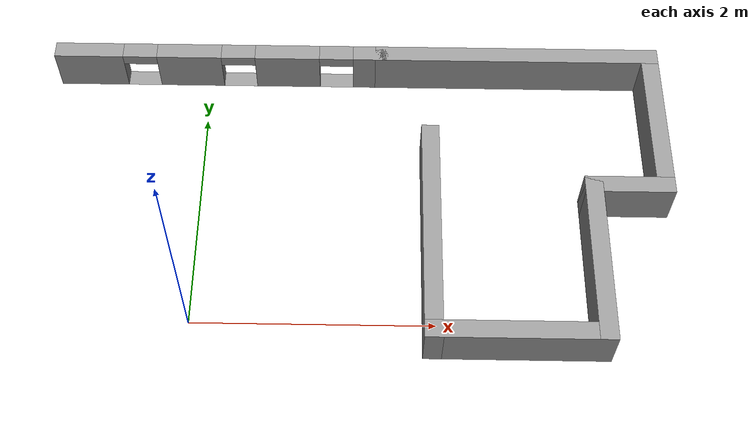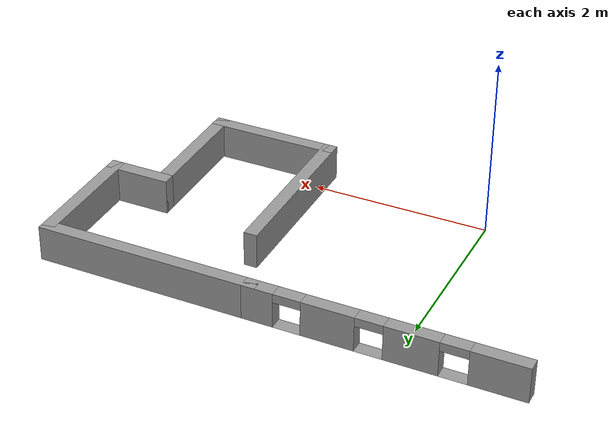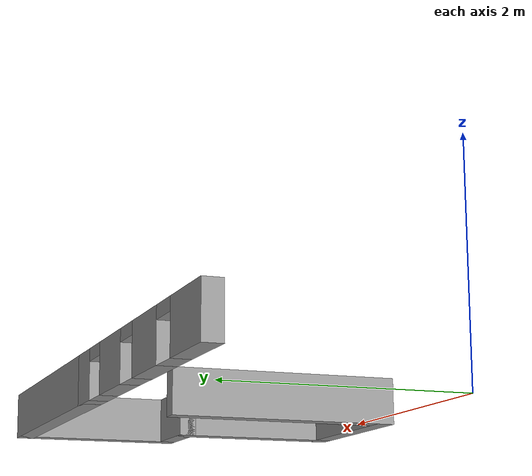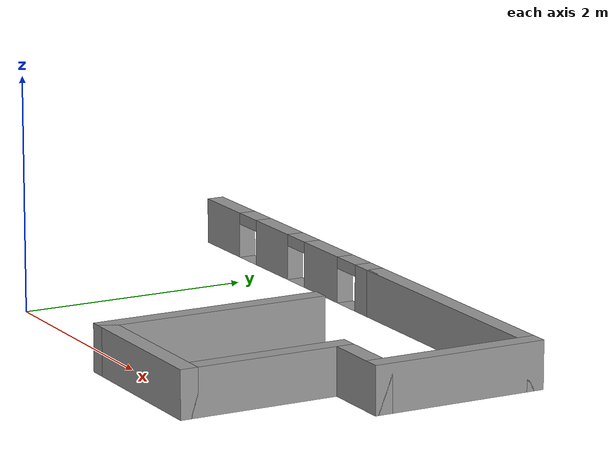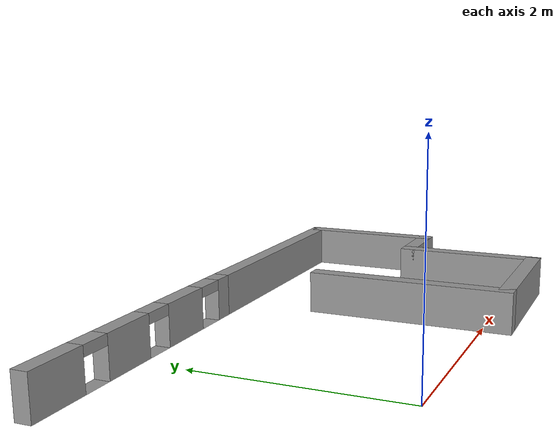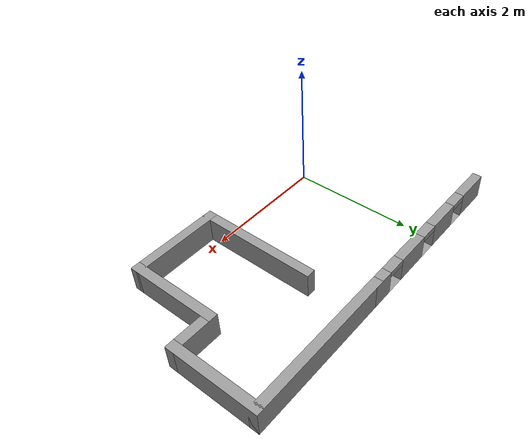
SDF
<?xml version='1.0'?>
<sdf version='1.7'>
  <model name='map'>
    <pose frame=''>1.3132 1.175 0 0 -0 1.5708</pose>
    <link name='Wall_12'>
      <pose>1.3132 1.175 0 0 -0 1.5708</pose>
      <self_collide>0</self_collide>
      <enable_wind>0</enable_wind>
      <kinematic>0</kinematic>
      <visual name='Wall_12_Visual_0'>
        <pose>-1.32638 0 0.2 0 -0 0</pose>
        <geometry>
          <box>
            <size>0.34725 0.15 0.4</size>
          </box>
        </geometry>
        <material>
          <script>
            <uri>file://media/materials/scripts/gazebo.material</uri>
            <name>Gazebo/Grey</name>
          </script>
          <ambient>1 1 1 1</ambient>
          <shader type='pixel'/>
        </material>
        <meta>
          <layer>0</layer>
        </meta>
        <transparency>0</transparency>
        <cast_shadows>1</cast_shadows>
      </visual>
      <visual name='Wall_12_Visual_1'>
        <pose>-0.566325 0 0.2 0 -0 0</pose>
        <geometry>
          <box>
            <size>0.57285 0.15 0.4</size>
          </box>
        </geometry>
        <material>
          <script>
            <uri>file://media/materials/scripts/gazebo.material</uri>
            <name>Gazebo/Grey</name>
          </script>
          <ambient>1 1 1 1</ambient>
          <shader type='pixel'/>
        </material>
        <meta>
          <layer>0</layer>
        </meta>
        <transparency>0</transparency>
        <cast_shadows>1</cast_shadows>
      </visual>
      <visual name='Wall_12_Visual_2'>
        <pose>0.306525 0 0.2 0 -0 0</pose>
        <geometry>
          <box>
            <size>0.57285 0.15 0.4</size>
          </box>
        </geometry>
        <material>
          <script>
            <uri>file://media/materials/scripts/gazebo.material</uri>
            <name>Gazebo/Grey</name>
          </script>
          <ambient>1 1 1 1</ambient>
          <shader type='pixel'/>
        </material>
        <meta>
          <layer>0</layer>
        </meta>
        <transparency>0</transparency>
        <cast_shadows>1</cast_shadows>
      </visual>
      <visual name='Wall_12_Visual_3'>
        <pose>1.19647 0 0.2 0 -0 0</pose>
        <geometry>
          <box>
            <size>0.60705 0.15 0.4</size>
          </box>
        </geometry>
        <material>
          <script>
            <uri>file://media/materials/scripts/gazebo.material</uri>
            <name>Gazebo/Grey</name>
          </script>
          <ambient>1 1 1 1</ambient>
          <shader type='pixel'/>
        </material>
        <meta>
          <layer>0</layer>
        </meta>
        <transparency>0</transparency>
        <cast_shadows>1</cast_shadows>
      </visual>
      <visual name='Wall_12_Visual_4'>
        <pose>-1.00275 0 0 0 -0 0</pose>
        <geometry>
          <box>
            <size>0.3 0.15 0</size>
          </box>
        </geometry>
        <material>
          <script>
            <uri>file://media/materials/scripts/gazebo.material</uri>
            <name>Gazebo/Grey</name>
          </script>
          <ambient>1 1 1 1</ambient>
          <shader type='pixel'/>
        </material>
        <meta>
          <layer>0</layer>
        </meta>
        <transparency>0</transparency>
        <cast_shadows>1</cast_shadows>
      </visual>
      <visual name='Wall_12_Visual_5'>
        <pose>-0.1299 0 0 0 -0 0</pose>
        <geometry>
          <box>
            <size>0.3 0.15 0</size>
          </box>
        </geometry>
        <material>
          <script>
            <uri>file://media/materials/scripts/gazebo.material</uri>
            <name>Gazebo/Grey</name>
          </script>
          <ambient>1 1 1 1</ambient>
          <shader type='pixel'/>
        </material>
        <meta>
          <layer>0</layer>
        </meta>
        <transparency>0</transparency>
        <cast_shadows>1</cast_shadows>
      </visual>
      <visual name='Wall_12_Visual_6'>
        <pose>0.74295 0 0 0 -0 0</pose>
        <geometry>
          <box>
            <size>0.3 0.15 0</size>
          </box>
        </geometry>
        <material>
          <script>
            <uri>file://media/materials/scripts/gazebo.material</uri>
            <name>Gazebo/Grey</name>
          </script>
          <ambient>1 1 1 1</ambient>
          <shader type='pixel'/>
        </material>
        <meta>
          <layer>0</layer>
        </meta>
        <transparency>0</transparency>
        <cast_shadows>1</cast_shadows>
      </visual>
      <visual name='Wall_12_Visual_7'>
        <pose>-1.00275 0 0.35 0 -0 0</pose>
        <geometry>
          <box>
            <size>0.3 0.15 0.1</size>
          </box>
        </geometry>
        <material>
          <script>
            <uri>file://media/materials/scripts/gazebo.material</uri>
            <name>Gazebo/Grey</name>
          </script>
          <ambient>1 1 1 1</ambient>
          <shader type='pixel'/>
        </material>
        <meta>
          <layer>0</layer>
        </meta>
        <transparency>0</transparency>
        <cast_shadows>1</cast_shadows>
      </visual>
      <visual name='Wall_12_Visual_8'>
        <pose>-0.1299 0 0.35 0 -0 0</pose>
        <geometry>
          <box>
            <size>0.3 0.15 0.1</size>
          </box>
        </geometry>
        <material>
          <script>
            <uri>file://media/materials/scripts/gazebo.material</uri>
            <name>Gazebo/Grey</name>
          </script>
          <ambient>1 1 1 1</ambient>
          <shader type='pixel'/>
        </material>
        <meta>
          <layer>0</layer>
        </meta>
        <transparency>0</transparency>
        <cast_shadows>1</cast_shadows>
      </visual>
      <visual name='Wall_12_Visual_9'>
        <pose>0.74295 0 0.35 0 -0 0</pose>
        <geometry>
          <box>
            <size>0.3 0.15 0.1</size>
          </box>
        </geometry>
        <material>
          <script>
            <uri>file://media/materials/scripts/gazebo.material</uri>
            <name>Gazebo/Grey</name>
          </script>
          <ambient>1 1 1 1</ambient>
          <shader type='pixel'/>
        </material>
        <meta>
          <layer>0</layer>
        </meta>
        <transparency>0</transparency>
        <cast_shadows>1</cast_shadows>
      </visual>
      <collision name='Wall_12_Collision_0'>
        <laser_retro>0</laser_retro>
        <max_contacts>10</max_contacts>
        <pose>-1.32638 0 0.2 0 -0 0</pose>
        <geometry>
          <box>
            <size>0.34725 0.15 0.4</size>
          </box>
        </geometry>
        <surface>
          <friction>
            <ode>
              <mu>1</mu>
              <mu2>1</mu2>
              <fdir1>0 0 0</fdir1>
              <slip1>0</slip1>
              <slip2>0</slip2>
            </ode>
            <torsional>
              <coefficient>1</coefficient>
              <patch_radius>0</patch_radius>
              <surface_radius>0</surface_radius>
              <use_patch_radius>1</use_patch_radius>
              <ode>
                <slip>0</slip>
              </ode>
            </torsional>
          </friction>
          <bounce>
            <restitution_coefficient>0</restitution_coefficient>
            <threshold>1e+06</threshold>
          </bounce>
          <contact>
            <collide_without_contact>0</collide_without_contact>
            <collide_without_contact_bitmask>1</collide_without_contact_bitmask>
            <collide_bitmask>1</collide_bitmask>
            <ode>
              <soft_cfm>0</soft_cfm>
              <soft_erp>0.2</soft_erp>
              <kp>1e+13</kp>
              <kd>1</kd>
              <max_vel>0.01</max_vel>
              <min_depth>0</min_depth>
            </ode>
            <bullet>
              <split_impulse>1</split_impulse>
              <split_impulse_penetration_threshold>-0.01</split_impulse_penetration_threshold>
              <soft_cfm>0</soft_cfm>
              <soft_erp>0.2</soft_erp>
              <kp>1e+13</kp>
              <kd>1</kd>
            </bullet>
          </contact>
        </surface>
      </collision>
      <collision name='Wall_12_Collision_1'>
        <laser_retro>0</laser_retro>
        <max_contacts>10</max_contacts>
        <pose>-0.566325 0 0.2 0 -0 0</pose>
        <geometry>
          <box>
            <size>0.57285 0.15 0.4</size>
          </box>
        </geometry>
        <surface>
          <friction>
            <ode>
              <mu>1</mu>
              <mu2>1</mu2>
              <fdir1>0 0 0</fdir1>
              <slip1>0</slip1>
              <slip2>0</slip2>
            </ode>
            <torsional>
              <coefficient>1</coefficient>
              <patch_radius>0</patch_radius>
              <surface_radius>0</surface_radius>
              <use_patch_radius>1</use_patch_radius>
              <ode>
                <slip>0</slip>
              </ode>
            </torsional>
          </friction>
          <bounce>
            <restitution_coefficient>0</restitution_coefficient>
            <threshold>1e+06</threshold>
          </bounce>
          <contact>
            <collide_without_contact>0</collide_without_contact>
            <collide_without_contact_bitmask>1</collide_without_contact_bitmask>
            <collide_bitmask>1</collide_bitmask>
            <ode>
              <soft_cfm>0</soft_cfm>
              <soft_erp>0.2</soft_erp>
              <kp>1e+13</kp>
              <kd>1</kd>
              <max_vel>0.01</max_vel>
              <min_depth>0</min_depth>
            </ode>
            <bullet>
              <split_impulse>1</split_impulse>
              <split_impulse_penetration_threshold>-0.01</split_impulse_penetration_threshold>
              <soft_cfm>0</soft_cfm>
              <soft_erp>0.2</soft_erp>
              <kp>1e+13</kp>
              <kd>1</kd>
            </bullet>
          </contact>
        </surface>
      </collision>
      <collision name='Wall_12_Collision_2'>
        <laser_retro>0</laser_retro>
        <max_contacts>10</max_contacts>
        <pose>0.306525 0 0.2 0 -0 0</pose>
        <geometry>
          <box>
            <size>0.57285 0.15 0.4</size>
          </box>
        </geometry>
        <surface>
          <friction>
            <ode>
              <mu>1</mu>
              <mu2>1</mu2>
              <fdir1>0 0 0</fdir1>
              <slip1>0</slip1>
              <slip2>0</slip2>
            </ode>
            <torsional>
              <coefficient>1</coefficient>
              <patch_radius>0</patch_radius>
              <surface_radius>0</surface_radius>
              <use_patch_radius>1</use_patch_radius>
              <ode>
                <slip>0</slip>
              </ode>
            </torsional>
          </friction>
          <bounce>
            <restitution_coefficient>0</restitution_coefficient>
            <threshold>1e+06</threshold>
          </bounce>
          <contact>
            <collide_without_contact>0</collide_without_contact>
            <collide_without_contact_bitmask>1</collide_without_contact_bitmask>
            <collide_bitmask>1</collide_bitmask>
            <ode>
              <soft_cfm>0</soft_cfm>
              <soft_erp>0.2</soft_erp>
              <kp>1e+13</kp>
              <kd>1</kd>
              <max_vel>0.01</max_vel>
              <min_depth>0</min_depth>
            </ode>
            <bullet>
              <split_impulse>1</split_impulse>
              <split_impulse_penetration_threshold>-0.01</split_impulse_penetration_threshold>
              <soft_cfm>0</soft_cfm>
              <soft_erp>0.2</soft_erp>
              <kp>1e+13</kp>
              <kd>1</kd>
            </bullet>
          </contact>
        </surface>
      </collision>
      <collision name='Wall_12_Collision_3'>
        <laser_retro>0</laser_retro>
        <max_contacts>10</max_contacts>
        <pose>1.19647 0 0.2 0 -0 0</pose>
        <geometry>
          <box>
            <size>0.60705 0.15 0.4</size>
          </box>
        </geometry>
        <surface>
          <friction>
            <ode>
              <mu>1</mu>
              <mu2>1</mu2>
              <fdir1>0 0 0</fdir1>
              <slip1>0</slip1>
              <slip2>0</slip2>
            </ode>
            <torsional>
              <coefficient>1</coefficient>
              <patch_radius>0</patch_radius>
              <surface_radius>0</surface_radius>
              <use_patch_radius>1</use_patch_radius>
              <ode>
                <slip>0</slip>
              </ode>
            </torsional>
          </friction>
          <bounce>
            <restitution_coefficient>0</restitution_coefficient>
            <threshold>1e+06</threshold>
          </bounce>
          <contact>
            <collide_without_contact>0</collide_without_contact>
            <collide_without_contact_bitmask>1</collide_without_contact_bitmask>
            <collide_bitmask>1</collide_bitmask>
            <ode>
              <soft_cfm>0</soft_cfm>
              <soft_erp>0.2</soft_erp>
              <kp>1e+13</kp>
              <kd>1</kd>
              <max_vel>0.01</max_vel>
              <min_depth>0</min_depth>
            </ode>
            <bullet>
              <split_impulse>1</split_impulse>
              <split_impulse_penetration_threshold>-0.01</split_impulse_penetration_threshold>
              <soft_cfm>0</soft_cfm>
              <soft_erp>0.2</soft_erp>
              <kp>1e+13</kp>
              <kd>1</kd>
            </bullet>
          </contact>
        </surface>
      </collision>
      <collision name='Wall_12_Collision_4'>
        <laser_retro>0</laser_retro>
        <max_contacts>10</max_contacts>
        <pose>-1.00275 0 0 0 -0 0</pose>
        <geometry>
          <box>
            <size>0.3 0.15 0</size>
          </box>
        </geometry>
        <surface>
          <friction>
            <ode>
              <mu>1</mu>
              <mu2>1</mu2>
              <fdir1>0 0 0</fdir1>
              <slip1>0</slip1>
              <slip2>0</slip2>
            </ode>
            <torsional>
              <coefficient>1</coefficient>
              <patch_radius>0</patch_radius>
              <surface_radius>0</surface_radius>
              <use_patch_radius>1</use_patch_radius>
              <ode>
                <slip>0</slip>
              </ode>
            </torsional>
          </friction>
          <bounce>
            <restitution_coefficient>0</restitution_coefficient>
            <threshold>1e+06</threshold>
          </bounce>
          <contact>
            <collide_without_contact>0</collide_without_contact>
            <collide_without_contact_bitmask>1</collide_without_contact_bitmask>
            <collide_bitmask>1</collide_bitmask>
            <ode>
              <soft_cfm>0</soft_cfm>
              <soft_erp>0.2</soft_erp>
              <kp>1e+13</kp>
              <kd>1</kd>
              <max_vel>0.01</max_vel>
              <min_depth>0</min_depth>
            </ode>
            <bullet>
              <split_impulse>1</split_impulse>
              <split_impulse_penetration_threshold>-0.01</split_impulse_penetration_threshold>
              <soft_cfm>0</soft_cfm>
              <soft_erp>0.2</soft_erp>
              <kp>1e+13</kp>
              <kd>1</kd>
            </bullet>
          </contact>
        </surface>
      </collision>
      <collision name='Wall_12_Collision_5'>
        <laser_retro>0</laser_retro>
        <max_contacts>10</max_contacts>
        <pose>-0.1299 0 0 0 -0 0</pose>
        <geometry>
          <box>
            <size>0.3 0.15 0</size>
          </box>
        </geometry>
        <surface>
          <friction>
            <ode>
              <mu>1</mu>
              <mu2>1</mu2>
              <fdir1>0 0 0</fdir1>
              <slip1>0</slip1>
              <slip2>0</slip2>
            </ode>
            <torsional>
              <coefficient>1</coefficient>
              <patch_radius>0</patch_radius>
              <surface_radius>0</surface_radius>
              <use_patch_radius>1</use_patch_radius>
              <ode>
                <slip>0</slip>
              </ode>
            </torsional>
          </friction>
          <bounce>
            <restitution_coefficient>0</restitution_coefficient>
            <threshold>1e+06</threshold>
          </bounce>
          <contact>
            <collide_without_contact>0</collide_without_contact>
            <collide_without_contact_bitmask>1</collide_without_contact_bitmask>
            <collide_bitmask>1</collide_bitmask>
            <ode>
              <soft_cfm>0</soft_cfm>
              <soft_erp>0.2</soft_erp>
              <kp>1e+13</kp>
              <kd>1</kd>
              <max_vel>0.01</max_vel>
              <min_depth>0</min_depth>
            </ode>
            <bullet>
              <split_impulse>1</split_impulse>
              <split_impulse_penetration_threshold>-0.01</split_impulse_penetration_threshold>
              <soft_cfm>0</soft_cfm>
              <soft_erp>0.2</soft_erp>
              <kp>1e+13</kp>
              <kd>1</kd>
            </bullet>
          </contact>
        </surface>
      </collision>
      <collision name='Wall_12_Collision_6'>
        <laser_retro>0</laser_retro>
        <max_contacts>10</max_contacts>
        <pose>0.74295 0 0 0 -0 0</pose>
        <geometry>
          <box>
            <size>0.3 0.15 0</size>
          </box>
        </geometry>
        <surface>
          <friction>
            <ode>
              <mu>1</mu>
              <mu2>1</mu2>
              <fdir1>0 0 0</fdir1>
              <slip1>0</slip1>
              <slip2>0</slip2>
            </ode>
            <torsional>
              <coefficient>1</coefficient>
              <patch_radius>0</patch_radius>
              <surface_radius>0</surface_radius>
              <use_patch_radius>1</use_patch_radius>
              <ode>
                <slip>0</slip>
              </ode>
            </torsional>
          </friction>
          <bounce>
            <restitution_coefficient>0</restitution_coefficient>
            <threshold>1e+06</threshold>
          </bounce>
          <contact>
            <collide_without_contact>0</collide_without_contact>
            <collide_without_contact_bitmask>1</collide_without_contact_bitmask>
            <collide_bitmask>1</collide_bitmask>
            <ode>
              <soft_cfm>0</soft_cfm>
              <soft_erp>0.2</soft_erp>
              <kp>1e+13</kp>
              <kd>1</kd>
              <max_vel>0.01</max_vel>
              <min_depth>0</min_depth>
            </ode>
            <bullet>
              <split_impulse>1</split_impulse>
              <split_impulse_penetration_threshold>-0.01</split_impulse_penetration_threshold>
              <soft_cfm>0</soft_cfm>
              <soft_erp>0.2</soft_erp>
              <kp>1e+13</kp>
              <kd>1</kd>
            </bullet>
          </contact>
        </surface>
      </collision>
      <collision name='Wall_12_Collision_9'>
        <laser_retro>0</laser_retro>
        <max_contacts>10</max_contacts>
        <pose>0.74295 0 0.35 0 -0 0</pose>
        <geometry>
          <box>
            <size>0.3 0.15 0.1</size>
          </box>
        </geometry>
        <surface>
          <friction>
            <ode>
              <mu>1</mu>
              <mu2>1</mu2>
              <fdir1>0 0 0</fdir1>
              <slip1>0</slip1>
              <slip2>0</slip2>
            </ode>
            <torsional>
              <coefficient>1</coefficient>
              <patch_radius>0</patch_radius>
              <surface_radius>0</surface_radius>
              <use_patch_radius>1</use_patch_radius>
              <ode>
                <slip>0</slip>
              </ode>
            </torsional>
          </friction>
          <bounce>
            <restitution_coefficient>0</restitution_coefficient>
            <threshold>1e+06</threshold>
          </bounce>
          <contact>
            <collide_without_contact>0</collide_without_contact>
            <collide_without_contact_bitmask>1</collide_without_contact_bitmask>
            <collide_bitmask>1</collide_bitmask>
            <ode>
              <soft_cfm>0</soft_cfm>
              <soft_erp>0.2</soft_erp>
              <kp>1e+13</kp>
              <kd>1</kd>
              <max_vel>0.01</max_vel>
              <min_depth>0</min_depth>
            </ode>
            <bullet>
              <split_impulse>1</split_impulse>
              <split_impulse_penetration_threshold>-0.01</split_impulse_penetration_threshold>
              <soft_cfm>0</soft_cfm>
              <soft_erp>0.2</soft_erp>
              <kp>1e+13</kp>
              <kd>1</kd>
            </bullet>
          </contact>
        </surface>
      </collision>
      <collision name='Wall_12_Collision_7'>
        <laser_retro>0</laser_retro>
        <max_contacts>10</max_contacts>
        <pose>-1.00275 0 0.35 0 -0 0</pose>
        <geometry>
          <box>
            <size>0.3 0.15 0.1</size>
          </box>
        </geometry>
        <surface>
          <friction>
            <ode>
              <mu>1</mu>
              <mu2>1</mu2>
              <fdir1>0 0 0</fdir1>
              <slip1>0</slip1>
              <slip2>0</slip2>
            </ode>
            <torsional>
              <coefficient>1</coefficient>
              <patch_radius>0</patch_radius>
              <surface_radius>0</surface_radius>
              <use_patch_radius>1</use_patch_radius>
              <ode>
                <slip>0</slip>
              </ode>
            </torsional>
          </friction>
          <bounce>
            <restitution_coefficient>0</restitution_coefficient>
            <threshold>1e+06</threshold>
          </bounce>
          <contact>
            <collide_without_contact>0</collide_without_contact>
            <collide_without_contact_bitmask>1</collide_without_contact_bitmask>
            <collide_bitmask>1</collide_bitmask>
            <ode>
              <soft_cfm>0</soft_cfm>
              <soft_erp>0.2</soft_erp>
              <kp>1e+13</kp>
              <kd>1</kd>
              <max_vel>0.01</max_vel>
              <min_depth>0</min_depth>
            </ode>
            <bullet>
              <split_impulse>1</split_impulse>
              <split_impulse_penetration_threshold>-0.01</split_impulse_penetration_threshold>
              <soft_cfm>0</soft_cfm>
              <soft_erp>0.2</soft_erp>
              <kp>1e+13</kp>
              <kd>1</kd>
            </bullet>
          </contact>
        </surface>
      </collision>
      <collision name='Wall_12_Collision_8'>
        <laser_retro>0</laser_retro>
        <max_contacts>10</max_contacts>
        <pose>-0.1299 0 0.35 0 -0 0</pose>
        <geometry>
          <box>
            <size>0.3 0.15 0.1</size>
          </box>
        </geometry>
        <surface>
          <friction>
            <ode>
              <mu>1</mu>
              <mu2>1</mu2>
              <fdir1>0 0 0</fdir1>
              <slip1>0</slip1>
              <slip2>0</slip2>
            </ode>
            <torsional>
              <coefficient>1</coefficient>
              <patch_radius>0</patch_radius>
              <surface_radius>0</surface_radius>
              <use_patch_radius>1</use_patch_radius>
              <ode>
                <slip>0</slip>
              </ode>
            </torsional>
          </friction>
          <bounce>
            <restitution_coefficient>0</restitution_coefficient>
            <threshold>1e+06</threshold>
          </bounce>
          <contact>
            <collide_without_contact>0</collide_without_contact>
            <collide_without_contact_bitmask>1</collide_without_contact_bitmask>
            <collide_bitmask>1</collide_bitmask>
            <ode>
              <soft_cfm>0</soft_cfm>
              <soft_erp>0.2</soft_erp>
              <kp>1e+13</kp>
              <kd>1</kd>
              <max_vel>0.01</max_vel>
              <min_depth>0</min_depth>
            </ode>
            <bullet>
              <split_impulse>1</split_impulse>
              <split_impulse_penetration_threshold>-0.01</split_impulse_penetration_threshold>
              <soft_cfm>0</soft_cfm>
              <soft_erp>0.2</soft_erp>
              <kp>1e+13</kp>
              <kd>1</kd>
            </bullet>
          </contact>
        </surface>
      </collision>
    </link>
    <link name='Wall_4'>
      <pose>-0.4618 -0.65 0 0 -0 3.14159</pose>
      <self_collide>0</self_collide>
      <enable_wind>0</enable_wind>
      <kinematic>0</kinematic>
      <visual name='Wall_4_Visual'>
        <pose>0 0 0.2 0 -0 0</pose>
        <geometry>
          <box>
            <size>2 0.15 0.4</size>
          </box>
        </geometry>
        <material>
          <script>
            <uri>file://media/materials/scripts/gazebo.material</uri>
            <name>Gazebo/Grey</name>
          </script>
          <ambient>1 1 1 1</ambient>
          <shader type='pixel'/>
        </material>
        <meta>
          <layer>0</layer>
        </meta>
        <transparency>0</transparency>
        <cast_shadows>1</cast_shadows>
      </visual>
      <collision name='Wall_4_Collision'>
        <laser_retro>0</laser_retro>
        <max_contacts>10</max_contacts>
        <pose>0 0 0.2 0 -0 0</pose>
        <geometry>
          <box>
            <size>2 0.15 0.4</size>
          </box>
        </geometry>
        <surface>
          <friction>
            <ode>
              <mu>1</mu>
              <mu2>1</mu2>
              <fdir1>0 0 0</fdir1>
              <slip1>0</slip1>
              <slip2>0</slip2>
            </ode>
            <torsional>
              <coefficient>1</coefficient>
              <patch_radius>0</patch_radius>
              <surface_radius>0</surface_radius>
              <use_patch_radius>1</use_patch_radius>
              <ode>
                <slip>0</slip>
              </ode>
            </torsional>
          </friction>
          <bounce>
            <restitution_coefficient>0</restitution_coefficient>
            <threshold>1e+06</threshold>
          </bounce>
          <contact>
            <collide_without_contact>0</collide_without_contact>
            <collide_without_contact_bitmask>1</collide_without_contact_bitmask>
            <collide_bitmask>1</collide_bitmask>
            <ode>
              <soft_cfm>0</soft_cfm>
              <soft_erp>0.2</soft_erp>
              <kp>1e+13</kp>
              <kd>1</kd>
              <max_vel>0.01</max_vel>
              <min_depth>0</min_depth>
            </ode>
            <bullet>
              <split_impulse>1</split_impulse>
              <split_impulse_penetration_threshold>-0.01</split_impulse_penetration_threshold>
              <soft_cfm>0</soft_cfm>
              <soft_erp>0.2</soft_erp>
              <kp>1e+13</kp>
              <kd>1</kd>
            </bullet>
          </contact>
        </surface>
      </collision>
    </link>
    <link name='Wall_5'>
      <pose>-1.3868 -1.325 0 0 0 -1.5708</pose>
      <self_collide>0</self_collide>
      <enable_wind>0</enable_wind>
      <kinematic>0</kinematic>
      <visual name='Wall_5_Visual'>
        <pose>0 0 0.2 0 -0 0</pose>
        <geometry>
          <box>
            <size>1.5 0.15 0.4</size>
          </box>
        </geometry>
        <material>
          <script>
            <uri>file://media/materials/scripts/gazebo.material</uri>
            <name>Gazebo/Grey</name>
          </script>
          <ambient>1 1 1 1</ambient>
          <shader type='pixel'/>
        </material>
        <meta>
          <layer>0</layer>
        </meta>
        <transparency>0</transparency>
        <cast_shadows>1</cast_shadows>
      </visual>
      <collision name='Wall_5_Collision'>
        <laser_retro>0</laser_retro>
        <max_contacts>10</max_contacts>
        <pose>0 0 0.2 0 -0 0</pose>
        <geometry>
          <box>
            <size>1.5 0.15 0.4</size>
          </box>
        </geometry>
        <surface>
          <friction>
            <ode>
              <mu>1</mu>
              <mu2>1</mu2>
              <fdir1>0 0 0</fdir1>
              <slip1>0</slip1>
              <slip2>0</slip2>
            </ode>
            <torsional>
              <coefficient>1</coefficient>
              <patch_radius>0</patch_radius>
              <surface_radius>0</surface_radius>
              <use_patch_radius>1</use_patch_radius>
              <ode>
                <slip>0</slip>
              </ode>
            </torsional>
          </friction>
          <bounce>
            <restitution_coefficient>0</restitution_coefficient>
            <threshold>1e+06</threshold>
          </bounce>
          <contact>
            <collide_without_contact>0</collide_without_contact>
            <collide_without_contact_bitmask>1</collide_without_contact_bitmask>
            <collide_bitmask>1</collide_bitmask>
            <ode>
              <soft_cfm>0</soft_cfm>
              <soft_erp>0.2</soft_erp>
              <kp>1e+13</kp>
              <kd>1</kd>
              <max_vel>0.01</max_vel>
              <min_depth>0</min_depth>
            </ode>
            <bullet>
              <split_impulse>1</split_impulse>
              <split_impulse_penetration_threshold>-0.01</split_impulse_penetration_threshold>
              <soft_cfm>0</soft_cfm>
              <soft_erp>0.2</soft_erp>
              <kp>1e+13</kp>
              <kd>1</kd>
            </bullet>
          </contact>
        </surface>
      </collision>
    </link>
    <link name='Wall_6'>
      <pose>-0.7118 -2 0 0 -0 0</pose>
      <self_collide>0</self_collide>
      <enable_wind>0</enable_wind>
      <kinematic>0</kinematic>
      <visual name='Wall_6_Visual'>
        <pose>0 0 0.2 0 -0 0</pose>
        <geometry>
          <box>
            <size>1.5 0.15 0.4</size>
          </box>
        </geometry>
        <material>
          <script>
            <uri>file://media/materials/scripts/gazebo.material</uri>
            <name>Gazebo/Grey</name>
          </script>
          <ambient>1 1 1 1</ambient>
          <shader type='pixel'/>
        </material>
        <meta>
          <layer>0</layer>
        </meta>
        <transparency>0</transparency>
        <cast_shadows>1</cast_shadows>
      </visual>
      <collision name='Wall_6_Collision'>
        <laser_retro>0</laser_retro>
        <max_contacts>10</max_contacts>
        <pose>0 0 0.2 0 -0 0</pose>
        <geometry>
          <box>
            <size>1.5 0.15 0.4</size>
          </box>
        </geometry>
        <surface>
          <friction>
            <ode>
              <mu>1</mu>
              <mu2>1</mu2>
              <fdir1>0 0 0</fdir1>
              <slip1>0</slip1>
              <slip2>0</slip2>
            </ode>
            <torsional>
              <coefficient>1</coefficient>
              <patch_radius>0</patch_radius>
              <surface_radius>0</surface_radius>
              <use_patch_radius>1</use_patch_radius>
              <ode>
                <slip>0</slip>
              </ode>
            </torsional>
          </friction>
          <bounce>
            <restitution_coefficient>0</restitution_coefficient>
            <threshold>1e+06</threshold>
          </bounce>
          <contact>
            <collide_without_contact>0</collide_without_contact>
            <collide_without_contact_bitmask>1</collide_without_contact_bitmask>
            <collide_bitmask>1</collide_bitmask>
            <ode>
              <soft_cfm>0</soft_cfm>
              <soft_erp>0.2</soft_erp>
              <kp>1e+13</kp>
              <kd>1</kd>
              <max_vel>0.01</max_vel>
              <min_depth>0</min_depth>
            </ode>
            <bullet>
              <split_impulse>1</split_impulse>
              <split_impulse_penetration_threshold>-0.01</split_impulse_penetration_threshold>
              <soft_cfm>0</soft_cfm>
              <soft_erp>0.2</soft_erp>
              <kp>1e+13</kp>
              <kd>1</kd>
            </bullet>
          </contact>
        </surface>
      </collision>
    </link>
    <link name='Wall_7'>
      <pose>-0.0368 -2.3 0 0 0 -1.5708</pose>
      <self_collide>0</self_collide>
      <enable_wind>0</enable_wind>
      <kinematic>0</kinematic>
      <visual name='Wall_7_Visual'>
        <pose>0 0 0.2 0 -0 0</pose>
        <geometry>
          <box>
            <size>0.75 0.15 0.4</size>
          </box>
        </geometry>
        <material>
          <script>
            <uri>file://media/materials/scripts/gazebo.material</uri>
            <name>Gazebo/Grey</name>
          </script>
          <ambient>1 1 1 1</ambient>
          <shader type='pixel'/>
        </material>
        <meta>
          <layer>0</layer>
        </meta>
        <transparency>0</transparency>
        <cast_shadows>1</cast_shadows>
      </visual>
      <collision name='Wall_7_Collision'>
        <laser_retro>0</laser_retro>
        <max_contacts>10</max_contacts>
        <pose>0 0 0.2 0 -0 0</pose>
        <geometry>
          <box>
            <size>0.75 0.15 0.4</size>
          </box>
        </geometry>
        <surface>
          <friction>
            <ode>
              <mu>1</mu>
              <mu2>1</mu2>
              <fdir1>0 0 0</fdir1>
              <slip1>0</slip1>
              <slip2>0</slip2>
            </ode>
            <torsional>
              <coefficient>1</coefficient>
              <patch_radius>0</patch_radius>
              <surface_radius>0</surface_radius>
              <use_patch_radius>1</use_patch_radius>
              <ode>
                <slip>0</slip>
              </ode>
            </torsional>
          </friction>
          <bounce>
            <restitution_coefficient>0</restitution_coefficient>
            <threshold>1e+06</threshold>
          </bounce>
          <contact>
            <collide_without_contact>0</collide_without_contact>
            <collide_without_contact_bitmask>1</collide_without_contact_bitmask>
            <collide_bitmask>1</collide_bitmask>
            <ode>
              <soft_cfm>0</soft_cfm>
              <soft_erp>0.2</soft_erp>
              <kp>1e+13</kp>
              <kd>1</kd>
              <max_vel>0.01</max_vel>
              <min_depth>0</min_depth>
            </ode>
            <bullet>
              <split_impulse>1</split_impulse>
              <split_impulse_penetration_threshold>-0.01</split_impulse_penetration_threshold>
              <soft_cfm>0</soft_cfm>
              <soft_erp>0.2</soft_erp>
              <kp>1e+13</kp>
              <kd>1</kd>
            </bullet>
          </contact>
        </surface>
      </collision>
    </link>
    <link name='Wall_8'>
      <pose>0.6382 -2.6 0 0 -0 0</pose>
      <self_collide>0</self_collide>
      <enable_wind>0</enable_wind>
      <kinematic>0</kinematic>
      <visual name='Wall_8_Visual'>
        <pose>0 0 0.2 0 -0 0</pose>
        <geometry>
          <box>
            <size>1.5 0.15 0.4</size>
          </box>
        </geometry>
        <material>
          <script>
            <uri>file://media/materials/scripts/gazebo.material</uri>
            <name>Gazebo/Grey</name>
          </script>
          <ambient>1 1 1 1</ambient>
          <shader type='pixel'/>
        </material>
        <meta>
          <layer>0</layer>
        </meta>
        <transparency>0</transparency>
        <cast_shadows>1</cast_shadows>
      </visual>
      <collision name='Wall_8_Collision'>
        <laser_retro>0</laser_retro>
        <max_contacts>10</max_contacts>
        <pose>0 0 0.2 0 -0 0</pose>
        <geometry>
          <box>
            <size>1.5 0.15 0.4</size>
          </box>
        </geometry>
        <surface>
          <friction>
            <ode>
              <mu>1</mu>
              <mu2>1</mu2>
              <fdir1>0 0 0</fdir1>
              <slip1>0</slip1>
              <slip2>0</slip2>
            </ode>
            <torsional>
              <coefficient>1</coefficient>
              <patch_radius>0</patch_radius>
              <surface_radius>0</surface_radius>
              <use_patch_radius>1</use_patch_radius>
              <ode>
                <slip>0</slip>
              </ode>
            </torsional>
          </friction>
          <bounce>
            <restitution_coefficient>0</restitution_coefficient>
            <threshold>1e+06</threshold>
          </bounce>
          <contact>
            <collide_without_contact>0</collide_without_contact>
            <collide_without_contact_bitmask>1</collide_without_contact_bitmask>
            <collide_bitmask>1</collide_bitmask>
            <ode>
              <soft_cfm>0</soft_cfm>
              <soft_erp>0.2</soft_erp>
              <kp>1e+13</kp>
              <kd>1</kd>
              <max_vel>0.01</max_vel>
              <min_depth>0</min_depth>
            </ode>
            <bullet>
              <split_impulse>1</split_impulse>
              <split_impulse_penetration_threshold>-0.01</split_impulse_penetration_threshold>
              <soft_cfm>0</soft_cfm>
              <soft_erp>0.2</soft_erp>
              <kp>1e+13</kp>
              <kd>1</kd>
            </bullet>
          </contact>
        </surface>
      </collision>
    </link>
    <link name='Wall_9'>
      <pose>1.3132 -1.425 0 0 -0 1.5708</pose>
      <self_collide>0</self_collide>
      <enable_wind>0</enable_wind>
      <kinematic>0</kinematic>
      <visual name='Wall_9_Visual'>
        <pose>0 0 0.2 0 -0 0</pose>
        <geometry>
          <box>
            <size>2.5 0.15 0.4</size>
          </box>
        </geometry>
        <material>
          <script>
            <uri>file://media/materials/scripts/gazebo.material</uri>
            <name>Gazebo/Grey</name>
          </script>
          <ambient>1 1 1 1</ambient>
          <shader type='pixel'/>
        </material>
        <meta>
          <layer>0</layer>
        </meta>
        <transparency>0</transparency>
        <cast_shadows>1</cast_shadows>
      </visual>
      <collision name='Wall_9_Collision'>
        <laser_retro>0</laser_retro>
        <max_contacts>10</max_contacts>
        <pose>0 0 0.2 0 -0 0</pose>
        <geometry>
          <box>
            <size>2.5 0.15 0.4</size>
          </box>
        </geometry>
        <surface>
          <friction>
            <ode>
              <mu>1</mu>
              <mu2>1</mu2>
              <fdir1>0 0 0</fdir1>
              <slip1>0</slip1>
              <slip2>0</slip2>
            </ode>
            <torsional>
              <coefficient>1</coefficient>
              <patch_radius>0</patch_radius>
              <surface_radius>0</surface_radius>
              <use_patch_radius>1</use_patch_radius>
              <ode>
                <slip>0</slip>
              </ode>
            </torsional>
          </friction>
          <bounce>
            <restitution_coefficient>0</restitution_coefficient>
            <threshold>1e+06</threshold>
          </bounce>
          <contact>
            <collide_without_contact>0</collide_without_contact>
            <collide_without_contact_bitmask>1</collide_without_contact_bitmask>
            <collide_bitmask>1</collide_bitmask>
            <ode>
              <soft_cfm>0</soft_cfm>
              <soft_erp>0.2</soft_erp>
              <kp>1e+13</kp>
              <kd>1</kd>
              <max_vel>0.01</max_vel>
              <min_depth>0</min_depth>
            </ode>
            <bullet>
              <split_impulse>1</split_impulse>
              <split_impulse_penetration_threshold>-0.01</split_impulse_penetration_threshold>
              <soft_cfm>0</soft_cfm>
              <soft_erp>0.2</soft_erp>
              <kp>1e+13</kp>
              <kd>1</kd>
            </bullet>
          </contact>
        </surface>
      </collision>
    </link>
    <static>1</static>
    <allow_auto_disable>1</allow_auto_disable>
  </model>
</sdf>
